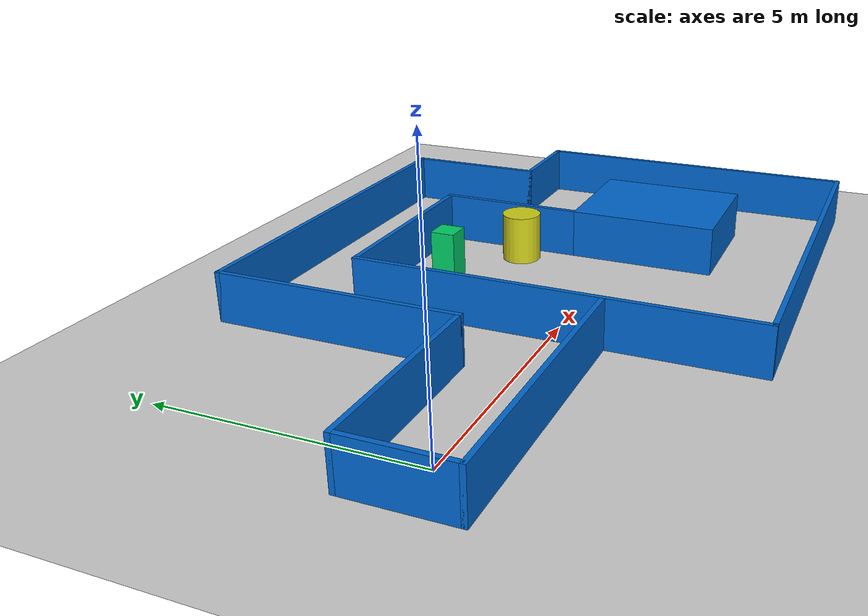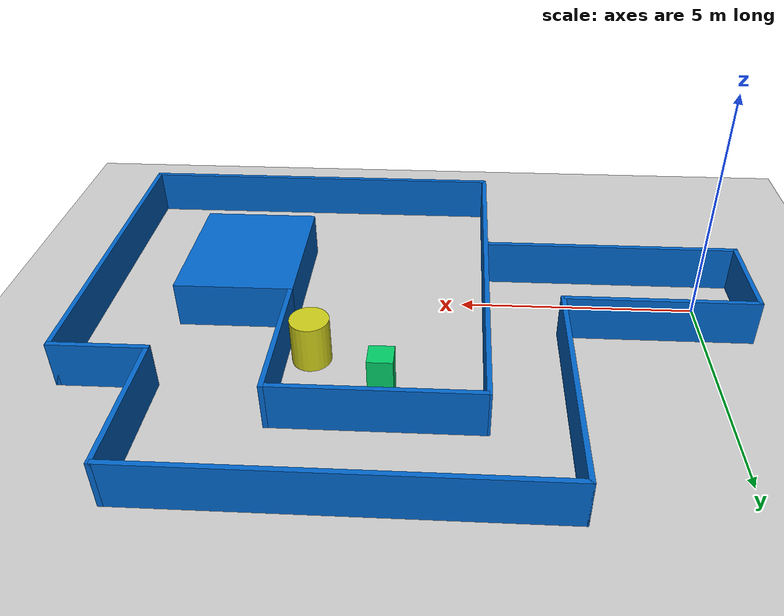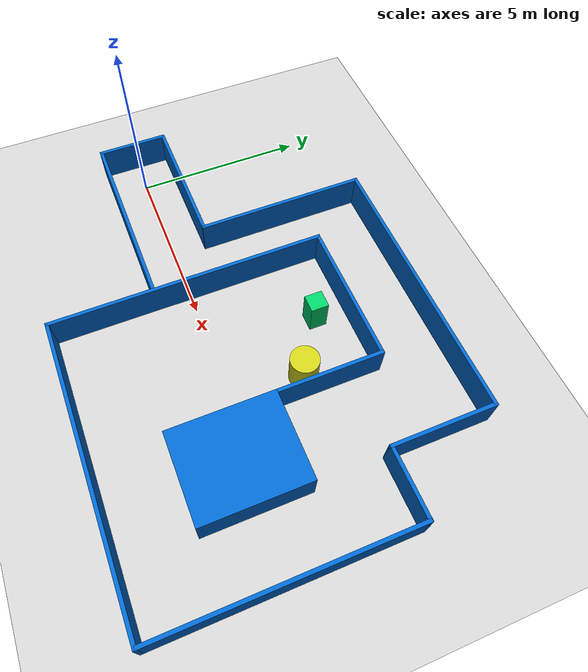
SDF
<?xml version='1.7'?>
<sdf version='1.7'>
  <world name='default'>
    <light name='sun' type='directional'>
      <cast_shadows>1</cast_shadows>
      <pose>0 0 10 0 -0 0</pose>
      <diffuse>0.8 0.8 0.8 1</diffuse>
      <specular>0.2 0.2 0.2 1</specular>
      <attenuation>
        <range>1000</range>
        <constant>0.9</constant>
        <linear>0.01</linear>
        <quadratic>0.001</quadratic>
      </attenuation>
      <direction>-0.5 0.1 -0.9</direction>
      <spot>
        <inner_angle>0</inner_angle>
        <outer_angle>0</outer_angle>
        <falloff>0</falloff>
      </spot>
    </light>
    <model name='ground_plane'>
      <static>1</static>
      <link name='link'>
        <collision name='collision'>
          <geometry>
            <plane>
              <normal>0 0 1</normal>
              <size>100 100</size>
            </plane>
          </geometry>
          <surface>
            <friction>
              <ode>
                <mu>100</mu>
                <mu2>50</mu2>
              </ode>
              <torsional>
                <ode/>
              </torsional>
            </friction>
            <contact>
              <ode/>
            </contact>
            <bounce/>
          </surface>
          <max_contacts>10</max_contacts>
        </collision>
        <visual name='visual'>
          <cast_shadows>0</cast_shadows>
          <geometry>
            <plane>
              <normal>0 0 1</normal>
              <size>100 100</size>
            </plane>
          </geometry>
          <material>
            <script>
              <uri>file://media/materials/scripts/gazebo.material</uri>
              <name>Gazebo/Grey</name>
            </script>
          </material>
        </visual>
        <self_collide>0</self_collide>
        <enable_wind>0</enable_wind>
      </link>
    </model>
    <gravity>0 0 -9.8</gravity>
    <magnetic_field>6e-06 2.3e-05 -4.2e-05</magnetic_field>
    <atmosphere type='adiabatic'/>
    <physics type='ode'>
      <max_step_size>0.001</max_step_size>
      <real_time_factor>1</real_time_factor>
      <real_time_update_rate>1000</real_time_update_rate>
    </physics>
    <scene>
      <ambient>0.4 0.4 0.4 1</ambient>
      <background>0.7 0.7 0.7 1</background>
      <shadows>0</shadows>
    </scene>
    <audio>
      <device>default</device>
    </audio>
    <wind/>
    <spherical_coordinates>
      <surface_model>EARTH_WGS84</surface_model>
      <latitude_deg>0</latitude_deg>
      <longitude_deg>0</longitude_deg>
      <elevation>0</elevation>
      <heading_deg>0</heading_deg>
    </spherical_coordinates>
    <gui fullscreen='0'>
      <camera name='user_camera'>
        <pose>8.0 0.0 30.0 0.0 1.5707 1.5707</pose>
        <view_controller>orbit</view_controller>
        <projection_type>perspective</projection_type>
      </camera>
    </gui>

    <model name="wall1">
      <static>1</static>
      <link name='wall1'>
        <pose>-1 0 0.5 0 0 0</pose>
        <static>true</static>
        <collision name='wall1_collision'>
          <geometry>
            <box>
              <size>0.1 2 1</size>
            </box>
          </geometry>
        </collision>
        <visual name='wall1_visual'>
          <geometry>
            <box>
              <size>0.1 2 1</size>
            </box>
          </geometry>
          <material>
            <ambient>0.1 0.1 0.1 1</ambient>
            <diffuse>0 0.4 0.8 1</diffuse>
            <specular>0 0.01 0.05 1</specular>
          </material>
        </visual>
      </link>
    </model>

    <model name="wall2">
      <static>1</static>
      <link name='wall2'>
        <pose>1.7 -1 0.5 0 0 0</pose>
        <static>true</static>
        <collision name='wall2_collision'>
          <geometry>
            <box>
              <size>5.5 0.1 1</size>
            </box>
          </geometry>
        </collision>
        <visual name='wall2_visual'>
          <geometry>
            <box>
              <size>5.5 0.1 1</size>
            </box>
          </geometry>
          <material>
            <ambient>0.1 0.1 0.1 1</ambient>
            <diffuse>0 0.4 0.8 1</diffuse>
            <specular>0 0.01 0.05 1</specular>
          </material>
        </visual>
      </link>
    </model>

    <model name="wall3">
      <static>1</static>
      <link name='wall3'>
        <pose>0.95 1 0.5 0 0 0</pose>
        <static>true</static>
        <collision name='wall3_collision'>
          <geometry>
            <box>
              <size>4 0.1 1</size>
            </box>
          </geometry>
        </collision>
        <visual name='wall3_visual'>
          <geometry>
            <box>
              <size>4 0.1 1</size>
            </box>
          </geometry>
          <material>
            <ambient>0.1 0.1 0.1 1</ambient>
            <diffuse>0 0.4 0.8 1</diffuse>
            <specular>0 0.01 0.05 1</specular>
          </material>
        </visual>
      </link>
    </model>

    <model name="wall4">
      <static>1</static>
      <link name='wall4'>
        <pose>2.95 3.45 0.5 0 0 0</pose>
        <static>true</static>
        <collision name='wall4_collision'>
          <geometry>
            <box>
              <size>0.1 5 1</size>
            </box>
          </geometry>
        </collision>
        <visual name='wall4_visual'>
          <geometry>
            <box>
              <size>0.1 5 1</size>
            </box>
          </geometry>
          <material>
            <ambient>0.1 0.1 0.1 1</ambient>
            <diffuse>0 0.4 0.8 1</diffuse>
            <specular>0 0.01 0.05 1</specular>
          </material>
        </visual>
      </link>
    </model>

    <model name="wall5">
      <static>1</static>
      <link name='wall5'>
        <pose>6.9 5.9 0.5 0 0 0</pose>
        <static>true</static>
        <collision name='wall5_collision'>
          <geometry>
            <box>
              <size>8 0.1 1</size>
            </box>
          </geometry>
        </collision>
        <visual name='wall5_visual'>
          <geometry>
            <box>
              <size>8 0.1 1</size>
            </box>
          </geometry>
          <material>
            <ambient>0.1 0.1 0.1 1</ambient>
            <diffuse>0 0.4 0.8 1</diffuse>
            <specular>0 0.01 0.05 1</specular>
          </material>
        </visual>
      </link>
    </model>

    <model name="wall6">
      <static>1</static>
      <link name='wall6'>
        <pose>10.9 4.45 0.5 0 0 0</pose>
        <static>true</static>
        <collision name='wall6_collision'>
          <geometry>
            <box>
              <size>0.1 3 1</size>
            </box>
          </geometry>
        </collision>
        <visual name='wall6_visual'>
          <geometry>
            <box>
              <size>0.1 3 1</size>
            </box>
          </geometry>
          <material>
            <ambient>0.1 0.1 0.1 1</ambient>
            <diffuse>0 0.4 0.8 1</diffuse>
            <specular>0 0.01 0.05 1</specular>
          </material>
        </visual>
      </link>
    </model>

    <model name="wall7">
      <static>1</static>
      <link name='wall7'>
        <pose>11.85 3.00 0.5 0 0 0</pose>
        <static>true</static>
        <collision name='wall7_collision'>
          <geometry>
            <box>
              <size>2 0.1 1</size>
            </box>
          </geometry>
        </collision>
        <visual name='wall7_visual'>
          <geometry>
            <box>
              <size>2 0.1 1</size>
            </box>
          </geometry>
          <material>
            <ambient>0.1 0.1 0.1 1</ambient>
            <diffuse>0 0.4 0.8 1</diffuse>
            <specular>0 0.01 0.05 1</specular>
          </material>
        </visual>
      </link>
    </model>

    <model name="wall8">
      <static>1</static>
      <link name='wall8'>
        <pose>12.8 -0.45 0.5 0 0 0</pose>
        <static>true</static>
        <collision name='wall8_collision'>
          <geometry>
            <box>
              <size>0.1 7 1</size>
            </box>
          </geometry>
        </collision>
        <visual name='wall8_visual'>
          <geometry>
            <box>
              <size>0.1 7 1</size>
            </box>
          </geometry>
          <material>
            <ambient>0.1 0.1 0.1 1</ambient>
            <diffuse>0 0.4 0.8 1</diffuse>
            <specular>0 0.01 0.05 1</specular>
          </material>
        </visual>
      </link>
    </model>

    <model name="wall9">
      <static>1</static>
      <link name='wall9'>
        <pose>8.675 -3.95 0.5 0 0 0</pose>
        <static>true</static>
        <collision name='wall9_collision'>
          <geometry>
            <box>
              <size>8.35 0.1 1</size>
            </box>
          </geometry>
        </collision>
        <visual name='wall9_visual'>
          <geometry>
            <box>
              <size>8.35 0.1 1</size>
            </box>
          </geometry>
          <material>
            <ambient>0.1 0.1 0.1 1</ambient>
            <diffuse>0 0.4 0.8 1</diffuse>
            <specular>0 0.01 0.05 1</specular>
          </material>
        </visual>
      </link>
    </model>

    <model name="wall10">
      <static>1</static>
      <link name='wall10'>
        <pose>4.5 0 0.5 0 0 0</pose>
        <static>true</static>
        <collision name='wall10_collision'>
          <geometry>
            <box>
              <size>0.1 8 1</size>
            </box>
          </geometry>
        </collision>
        <visual name='wall10_visual'>
          <geometry>
            <box>
              <size>0.1 8 1</size>
            </box>
          </geometry>
          <material>
            <ambient>0.1 0.1 0.1 1</ambient>
            <diffuse>0 0.4 0.8 1</diffuse>
            <specular>0 0.01 0.05 1</specular>
          </material>
        </visual>
      </link>
    </model>

    <model name="wall11">
      <static>1</static>
      <link name='wall11'>
        <pose>6.5 3.95 0.5 0 0 0</pose>
        <static>true</static>
        <collision name='wall11_collision'>
          <geometry>
            <box>
              <size>4 0.1 1</size>
            </box>
          </geometry>
        </collision>
        <visual name='wall11_visual'>
          <geometry>
            <box>
              <size>4 0.1 1</size>
            </box>
          </geometry>
          <material>
            <ambient>0.1 0.1 0.1 1</ambient>
            <diffuse>0 0.4 0.8 1</diffuse>
            <specular>0 0.01 0.05 1</specular>
          </material>
        </visual>
      </link>
    </model>

    <model name="wall12">
      <static>1</static>
      <link name='wall12'>
        <pose>8.55 2.5 0.5 0 0 0</pose>
        <static>true</static>
        <collision name='wall12_collision'>
          <geometry>
            <box>
              <size>0.1 3 1</size>
            </box>
          </geometry>
        </collision>
        <visual name='wall12_visual'>
          <geometry>
            <box>
              <size>0.1 3 1</size>
            </box>
          </geometry>
          <material>
            <ambient>0.1 0.1 0.1 1</ambient>
            <diffuse>0 0.4 0.8 1</diffuse>
            <specular>0 0.01 0.05 1</specular>
          </material>
        </visual>
      </link>
    </model>

    <model name="wall13">
      <static>1</static>
      <link name='wall13'>
        <pose>9.75 -0.5 0.5 0 0 0</pose>
        <static>true</static>
        <collision name='wall13_collision'>
          <geometry>
            <box>
              <size>2.5 3 1</size>
            </box>
          </geometry>
        </collision>
        <visual name='wall13_visual'>
          <geometry>
            <box>
              <size>2.5 3 1</size>
            </box>
          </geometry>
          <material>
            <ambient>0.1 0.1 0.1 1</ambient>
            <diffuse>0 0.4 0.8 1</diffuse>
            <specular>0 0.01 0.05 1</specular>
          </material>
        </visual>
      </link>
    </model>

    <model name="goal">
      <static>1</static>
      <link name='goal'>
        <pose>6.5 3 0.5 0 0 0</pose>
        <static>true</static>
        <collision name='goal_collision'>
          <geometry>
            <box>
              <size>0.5 0.5 1</size>
            </box>
          </geometry>
        </collision>
        <visual name='goal_visual'>
          <geometry>
            <box>
              <size>0.5 0.5 1</size>
            </box>
          </geometry>
          <material>
            <ambient>0.1 0.1 0.1 1</ambient>
            <diffuse>0 0.8 0.4 1</diffuse>
            <specular>0 0.01 0.05 1</specular>
          </material>
        </visual>
      </link>
    </model>

  <model name="circular_obstacle">
      <pose>8.0 2.0 0.5 0 0 0</pose>
      <allow_auto_disable>0</allow_auto_disable>

      <link name="link">
        <inertial>
          <mass>100.0</mass>
          <inertia>
            <ixx>10.0</ixx> <iyy>10.0</iyy> <izz>10.0</izz>
          </inertia>
        </inertial>
        <collision name="collision">
          <geometry>
            <cylinder>
              <radius>0.4</radius>
              <length>1.0</length>
            </cylinder>
          </geometry>
          <surface>
            <friction>
              <ode><mu>0.0</mu><mu2>0.0</mu2></ode>
            </friction>
          </surface>
        </collision>
        <visual name="visual">
          <geometry>
            <cylinder>
              <radius>0.4</radius>
              <length>1.0</length>
            </cylinder>
          </geometry>
          <material>
            <ambient>0.8 0.8 0.1 1</ambient>
            <diffuse>0.8 0.8 0.1 1</diffuse>
          </material>
        </visual>
      </link>

      <plugin name="circular_obstacle_planar_move" filename="libgazebo_ros_planar_move.so">
        <ros>
          <namespace>/obstacle_circ</namespace>
          <remapping>cmd_vel:=cmd_vel</remapping>
        </ros>
        <update_rate>50.0</update_rate>
        <publish_rate>10.0</publish_rate>
        <publish_odom>false</publish_odom>
        <publish_odom_tf>false</publish_odom_tf>
        <robot_base_frame>link</robot_base_frame>
      </plugin>
    </model>

  </world>
</sdf>
